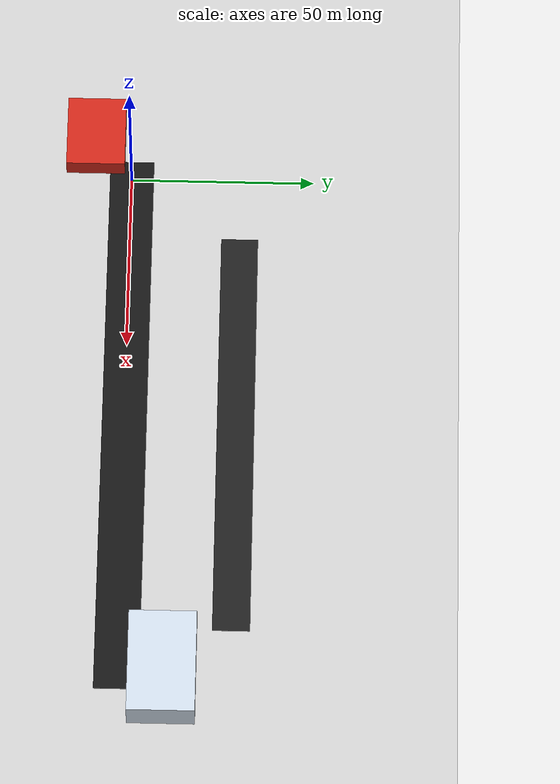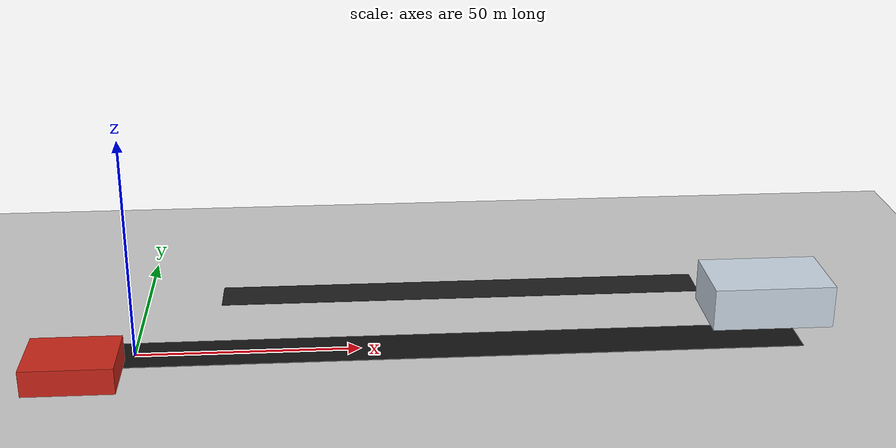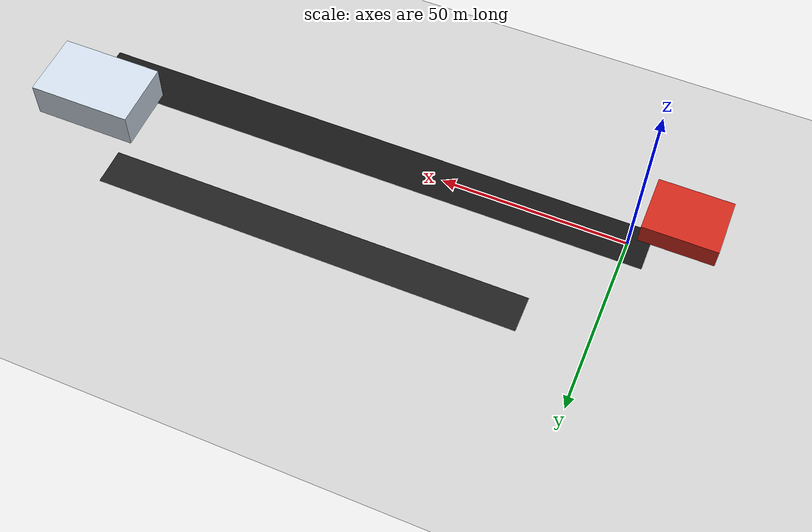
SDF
<?xml version="1.0"?><sdf version="1.9"><world name="smart_city"><physics name="1ms" type="ignored"><max_step_size>0.001</max_step_size><real_time_factor>1</real_time_factor></physics><include><uri>model://sun</uri></include><include><uri>model://ground_plane</uri></include><!-- arterial, northern and southern alternative corridors --><model name="main_road"><static>true</static><link name="road"><visual name="asphalt"><pose>72 0 .01 0 0 0</pose><geometry><box><size>155 12 .1</size></box></geometry><material><ambient>.08 .08 .08 1</ambient></material></visual></link></model><model name="north_road"><static>true</static><link name="road"><visual name="asphalt"><pose>75 30 .01 0 0 0</pose><geometry><box><size>115 10 .1</size></box></geometry><material><ambient>.12 .12 .12 1</ambient></material></visual></link></model><model name="hospital"><static>true</static><pose>145 12 5 0 0 0</pose><link name="building"><visual name="v"><geometry><box><size>28 18 10</size></box></geometry><material><ambient>.8 .85 .9 1</ambient></material></visual></link></model><model name="emergency_station"><static>true</static><pose>-12 -10 3 0 0 0</pose><link name="building"><visual name="v"><geometry><box><size>20 16 6</size></box></geometry><material><ambient>.8 .15 .1 1</ambient></material></visual></link></model></world></sdf>
